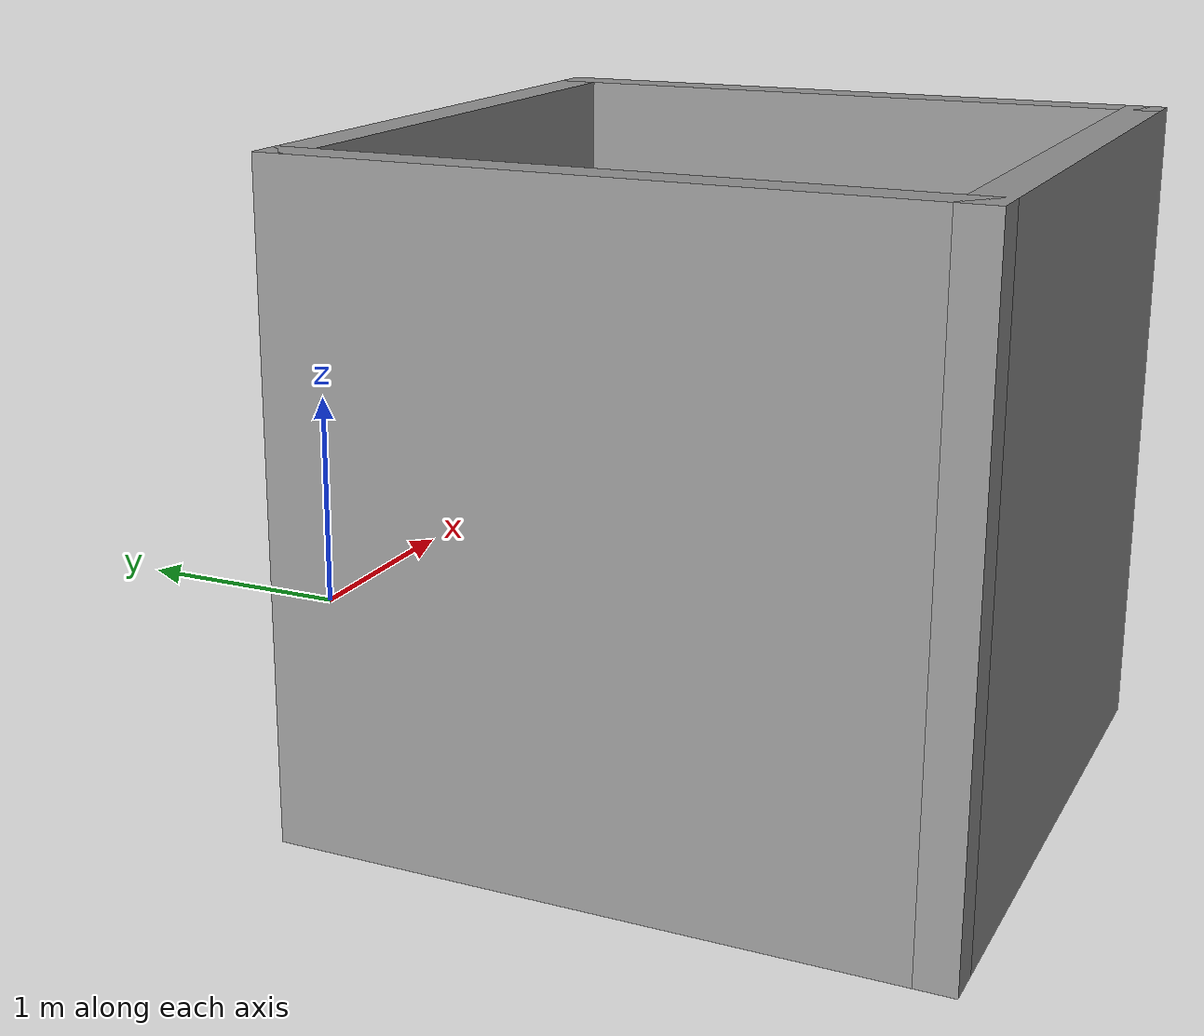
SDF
<?xml version='1.0'?>
<sdf version='1.6'>
  <model name='quadrado'>
    <pose frame=''>-0.955 -2.415 0 0 -0 0</pose>
    <link name='Wall_0'>
      <collision name='Wall_0_Collision'>
        <geometry>
          <box>
            <size>2.5 0.15 2.5</size>
          </box>
        </geometry>
        <pose frame=''>0 0 1.25 0 -0 0</pose>
      </collision>
      <visual name='Wall_0_Visual'>
        <pose frame=''>0 0 1.25 0 -0 0</pose>
        <geometry>
          <box>
            <size>2.5 0.15 2.5</size>
          </box>
        </geometry>
        <material>
          <script>
            <uri>file://media/materials/scripts/gazebo.material</uri>
            <name>Gazebo/Grey</name>
          </script>
          <ambient>1 1 1 1</ambient>
        </material>
        <meta>
          <layer>0</layer>
        </meta>
      </visual>
      <pose frame=''>-1.175 0 0 0 -0 1.5708</pose>
    </link>
    <link name='Wall_2'>
      <collision name='Wall_2_Collision'>
        <geometry>
          <box>
            <size>2.5 0.15 2.5</size>
          </box>
        </geometry>
        <pose frame=''>0 0 1.25 0 -0 0</pose>
      </collision>
      <visual name='Wall_2_Visual'>
        <pose frame=''>0 0 1.25 0 -0 0</pose>
        <geometry>
          <box>
            <size>2.5 0.15 2.5</size>
          </box>
        </geometry>
        <material>
          <script>
            <uri>file://media/materials/scripts/gazebo.material</uri>
            <name>Gazebo/Grey</name>
          </script>
          <ambient>1 1 1 1</ambient>
        </material>
        <meta>
          <layer>0</layer>
        </meta>
      </visual>
      <pose frame=''>0 1.175 0 0 -0 0</pose>
    </link>
    <link name='Wall_3'>
      <collision name='Wall_3_Collision'>
        <geometry>
          <box>
            <size>2.5 0.15 2.5</size>
          </box>
        </geometry>
        <pose frame=''>0 0 1.25 0 -0 0</pose>
      </collision>
      <visual name='Wall_3_Visual'>
        <pose frame=''>0 0 1.25 0 -0 0</pose>
        <geometry>
          <box>
            <size>2.5 0.15 2.5</size>
          </box>
        </geometry>
        <material>
          <script>
            <uri>file://media/materials/scripts/gazebo.material</uri>
            <name>Gazebo/Grey</name>
          </script>
          <ambient>1 1 1 1</ambient>
        </material>
        <meta>
          <layer>0</layer>
        </meta>
      </visual>
      <pose frame=''>1.175 0 0 0 0 -1.5708</pose>
    </link>
    <link name='Wall_4'>
      <collision name='Wall_4_Collision'>
        <geometry>
          <box>
            <size>2.5 0.15 2.5</size>
          </box>
        </geometry>
        <pose frame=''>0 0 1.25 0 -0 0</pose>
      </collision>
      <visual name='Wall_4_Visual'>
        <pose frame=''>0 0 1.25 0 -0 0</pose>
        <geometry>
          <box>
            <size>2.5 0.15 2.5</size>
          </box>
        </geometry>
        <material>
          <script>
            <uri>file://media/materials/scripts/gazebo.material</uri>
            <name>Gazebo/Grey</name>
          </script>
          <ambient>1 1 1 1</ambient>
        </material>
        <meta>
          <layer>0</layer>
        </meta>
      </visual>
      <pose frame=''>0 -1.175 0 0 -0 3.14159</pose>
    </link>
    <static>1</static>
  </model>
</sdf>
